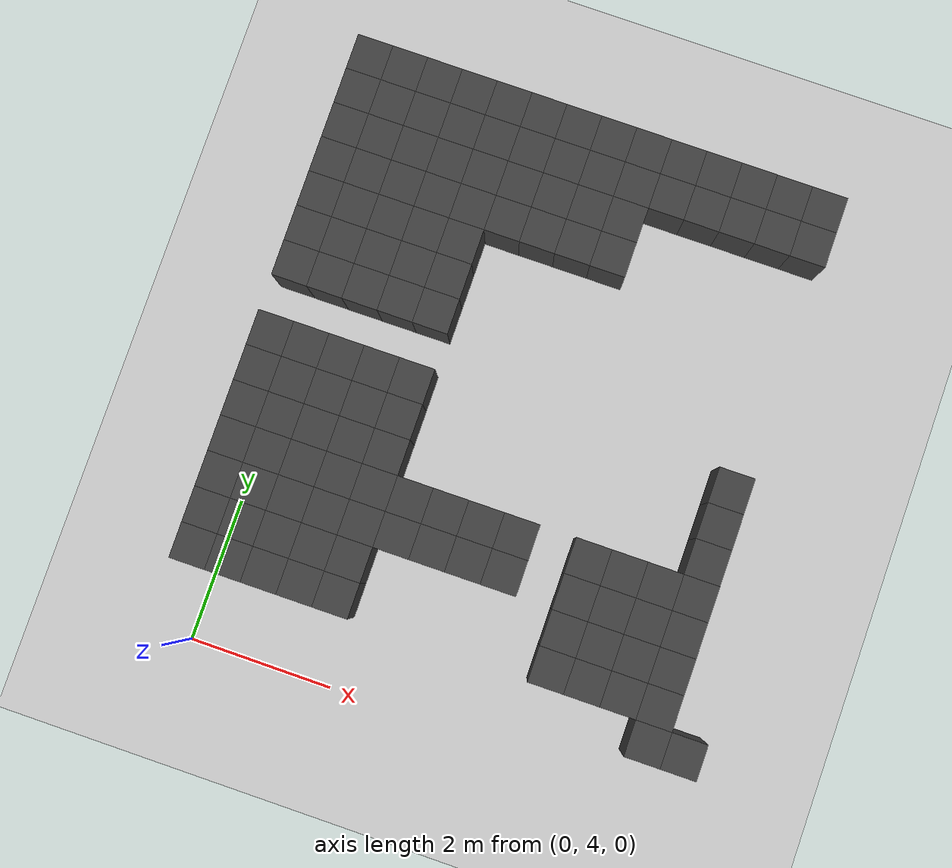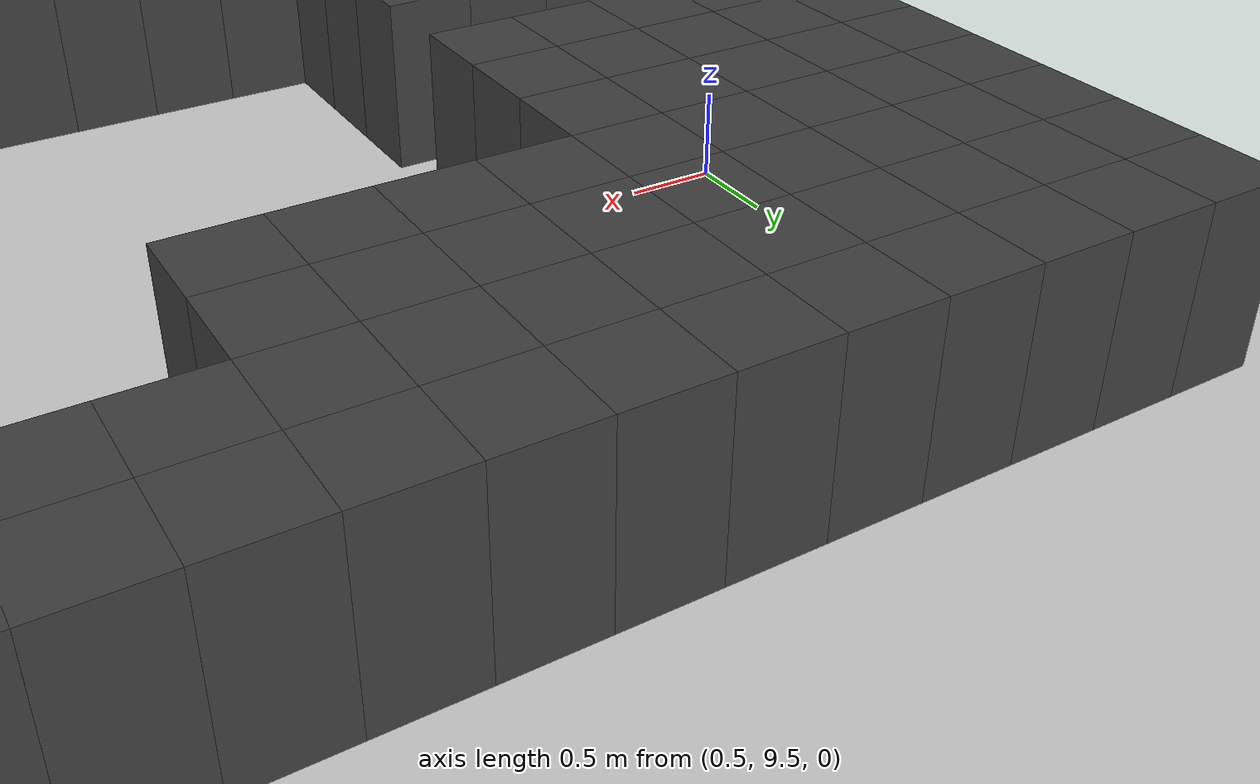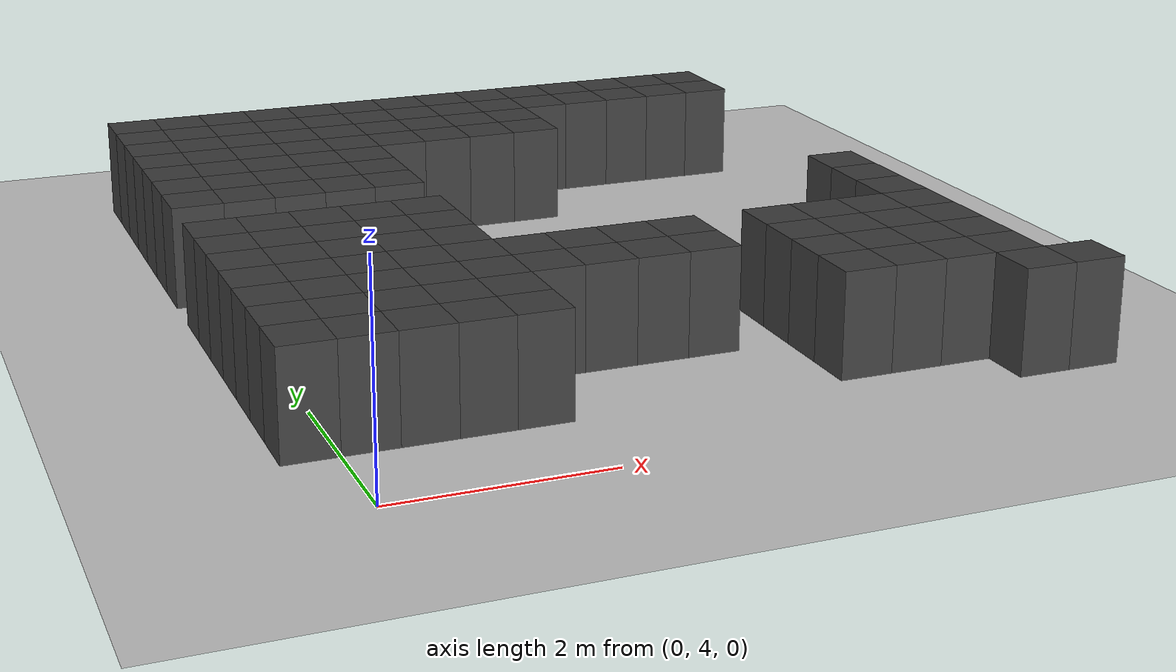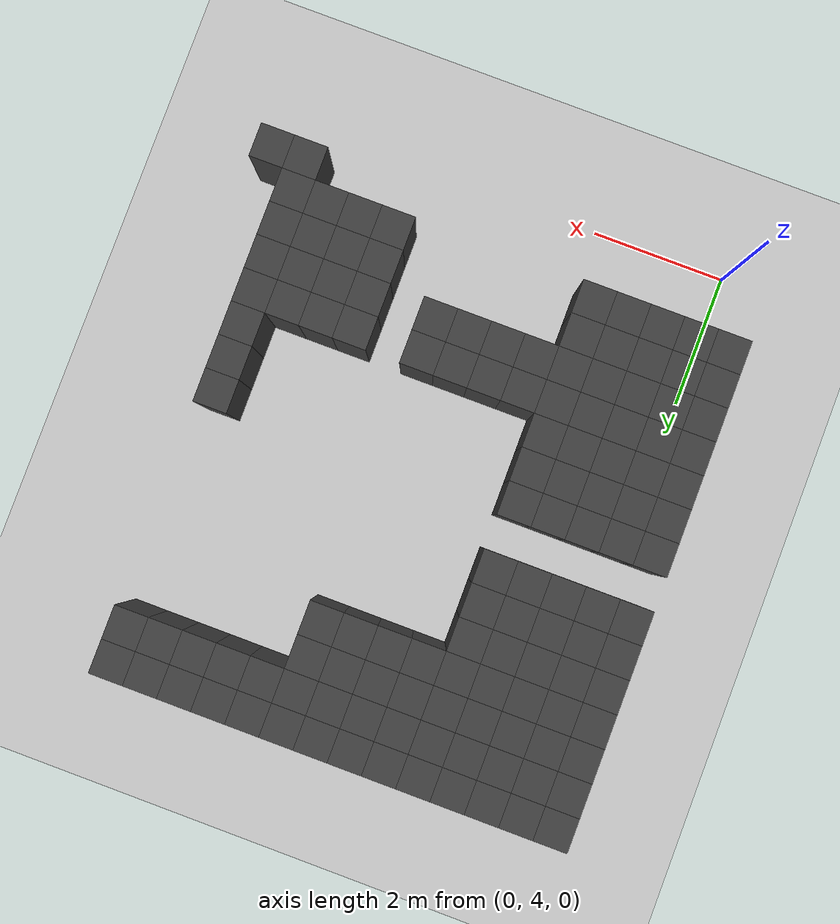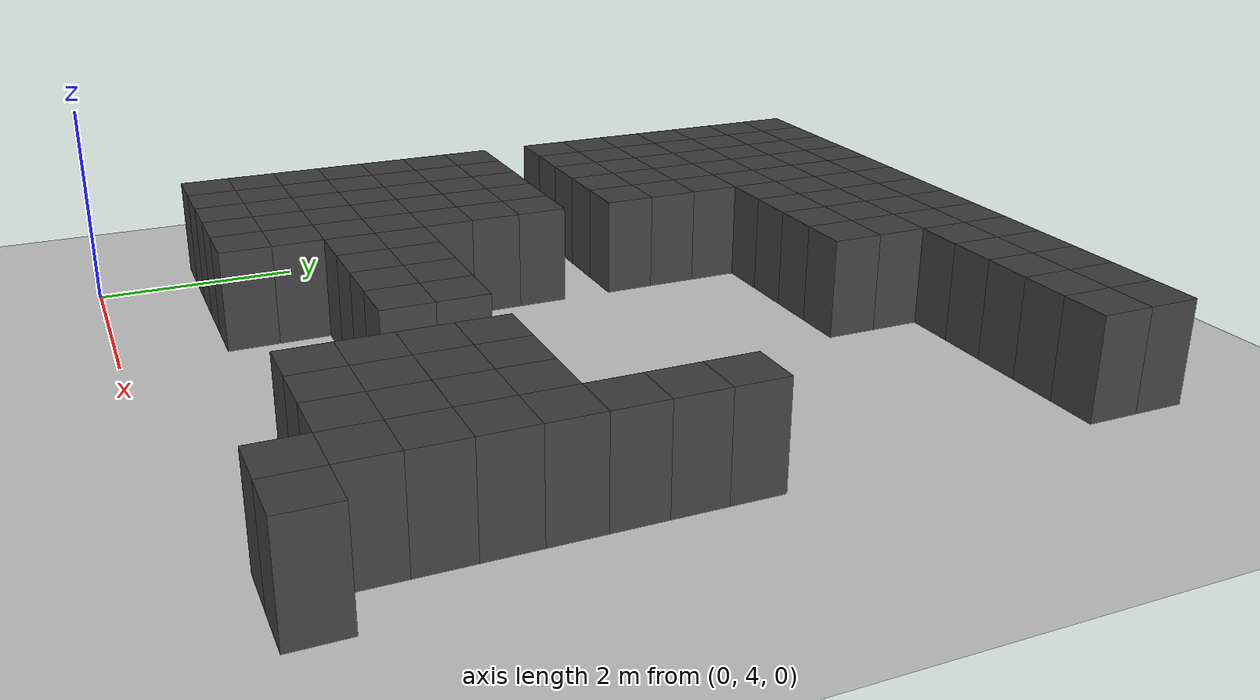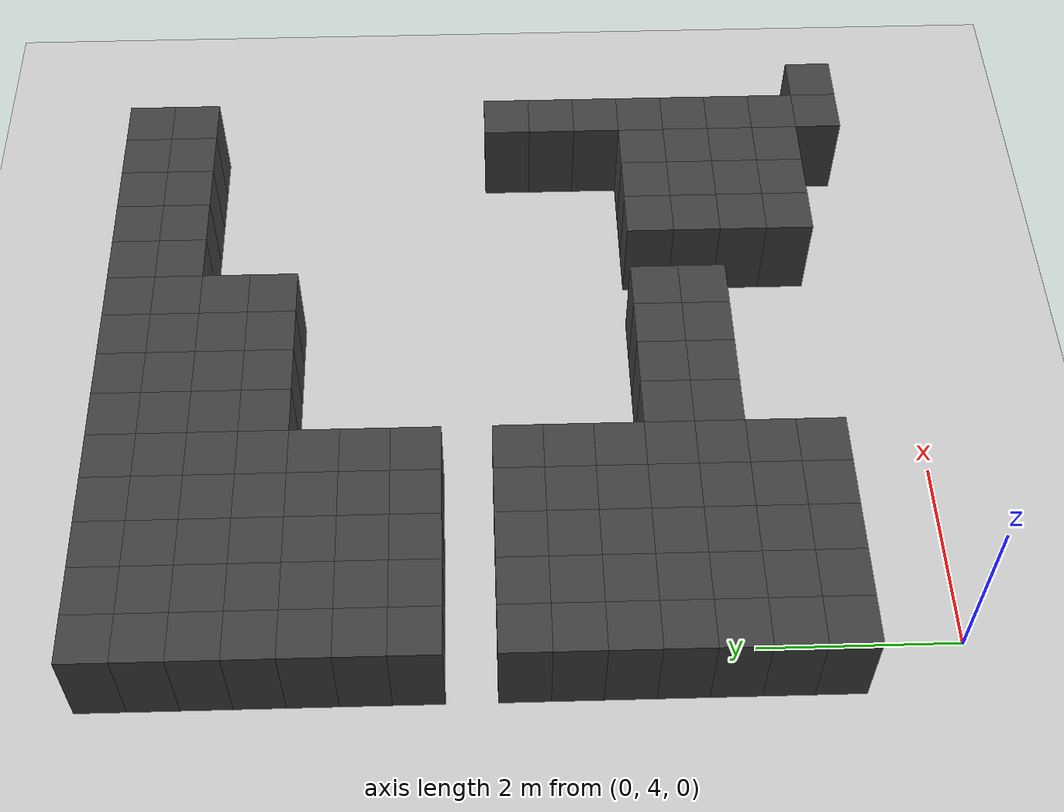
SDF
<sdf version="1.7">
 <world name="map_13994">
  <model name="ground_plane">
   <static>true</static>
   <link name="link">
    <collision name="collision">
     <geometry><plane><normal>0 0 1</normal><size>200 200</size></plane></geometry>
    </collision>
    <visual name="visual">
     <geometry><plane><normal>0 0 1</normal><size>200 200</size></plane></geometry>
     <material><ambient>0.8 0.8 0.8 1</ambient><diffuse>0.8 0.8 0.8 1</diffuse></material>
    </visual>
   </link>
  </model>
  <model name="maze_environment">
   <static>true</static>
   <link name="wall_24">
    <pose>-0.250 12.250 0.500 0 0 0</pose>
    <collision name="col"><geometry><box><size>0.5 0.5 1.0</size></box></geometry></collision>
    <visual name="vis">
     <geometry><box><size>0.5 0.5 1.0</size></box></geometry>
     <material><ambient>0.15 0.15 0.15 1</ambient><diffuse>0.25 0.25 0.25 1</diffuse></material>
    </visual>
   </link>
   <link name="wall_25">
    <pose>0.250 12.250 0.500 0 0 0</pose>
    <collision name="col"><geometry><box><size>0.5 0.5 1.0</size></box></geometry></collision>
    <visual name="vis">
     <geometry><box><size>0.5 0.5 1.0</size></box></geometry>
     <material><ambient>0.15 0.15 0.15 1</ambient><diffuse>0.25 0.25 0.25 1</diffuse></material>
    </visual>
   </link>
   <link name="wall_26">
    <pose>0.750 12.250 0.500 0 0 0</pose>
    <collision name="col"><geometry><box><size>0.5 0.5 1.0</size></box></geometry></collision>
    <visual name="vis">
     <geometry><box><size>0.5 0.5 1.0</size></box></geometry>
     <material><ambient>0.15 0.15 0.15 1</ambient><diffuse>0.25 0.25 0.25 1</diffuse></material>
    </visual>
   </link>
   <link name="wall_27">
    <pose>1.250 12.250 0.500 0 0 0</pose>
    <collision name="col"><geometry><box><size>0.5 0.5 1.0</size></box></geometry></collision>
    <visual name="vis">
     <geometry><box><size>0.5 0.5 1.0</size></box></geometry>
     <material><ambient>0.15 0.15 0.15 1</ambient><diffuse>0.25 0.25 0.25 1</diffuse></material>
    </visual>
   </link>
   <link name="wall_28">
    <pose>1.750 12.250 0.500 0 0 0</pose>
    <collision name="col"><geometry><box><size>0.5 0.5 1.0</size></box></geometry></collision>
    <visual name="vis">
     <geometry><box><size>0.5 0.5 1.0</size></box></geometry>
     <material><ambient>0.15 0.15 0.15 1</ambient><diffuse>0.25 0.25 0.25 1</diffuse></material>
    </visual>
   </link>
   <link name="wall_29">
    <pose>2.250 12.250 0.500 0 0 0</pose>
    <collision name="col"><geometry><box><size>0.5 0.5 1.0</size></box></geometry></collision>
    <visual name="vis">
     <geometry><box><size>0.5 0.5 1.0</size></box></geometry>
     <material><ambient>0.15 0.15 0.15 1</ambient><diffuse>0.25 0.25 0.25 1</diffuse></material>
    </visual>
   </link>
   <link name="wall_30">
    <pose>2.750 12.250 0.500 0 0 0</pose>
    <collision name="col"><geometry><box><size>0.5 0.5 1.0</size></box></geometry></collision>
    <visual name="vis">
     <geometry><box><size>0.5 0.5 1.0</size></box></geometry>
     <material><ambient>0.15 0.15 0.15 1</ambient><diffuse>0.25 0.25 0.25 1</diffuse></material>
    </visual>
   </link>
   <link name="wall_31">
    <pose>3.250 12.250 0.500 0 0 0</pose>
    <collision name="col"><geometry><box><size>0.5 0.5 1.0</size></box></geometry></collision>
    <visual name="vis">
     <geometry><box><size>0.5 0.5 1.0</size></box></geometry>
     <material><ambient>0.15 0.15 0.15 1</ambient><diffuse>0.25 0.25 0.25 1</diffuse></material>
    </visual>
   </link>
   <link name="wall_32">
    <pose>3.750 12.250 0.500 0 0 0</pose>
    <collision name="col"><geometry><box><size>0.5 0.5 1.0</size></box></geometry></collision>
    <visual name="vis">
     <geometry><box><size>0.5 0.5 1.0</size></box></geometry>
     <material><ambient>0.15 0.15 0.15 1</ambient><diffuse>0.25 0.25 0.25 1</diffuse></material>
    </visual>
   </link>
   <link name="wall_33">
    <pose>4.250 12.250 0.500 0 0 0</pose>
    <collision name="col"><geometry><box><size>0.5 0.5 1.0</size></box></geometry></collision>
    <visual name="vis">
     <geometry><box><size>0.5 0.5 1.0</size></box></geometry>
     <material><ambient>0.15 0.15 0.15 1</ambient><diffuse>0.25 0.25 0.25 1</diffuse></material>
    </visual>
   </link>
   <link name="wall_34">
    <pose>4.750 12.250 0.500 0 0 0</pose>
    <collision name="col"><geometry><box><size>0.5 0.5 1.0</size></box></geometry></collision>
    <visual name="vis">
     <geometry><box><size>0.5 0.5 1.0</size></box></geometry>
     <material><ambient>0.15 0.15 0.15 1</ambient><diffuse>0.25 0.25 0.25 1</diffuse></material>
    </visual>
   </link>
   <link name="wall_35">
    <pose>5.250 12.250 0.500 0 0 0</pose>
    <collision name="col"><geometry><box><size>0.5 0.5 1.0</size></box></geometry></collision>
    <visual name="vis">
     <geometry><box><size>0.5 0.5 1.0</size></box></geometry>
     <material><ambient>0.15 0.15 0.15 1</ambient><diffuse>0.25 0.25 0.25 1</diffuse></material>
    </visual>
   </link>
   <link name="wall_36">
    <pose>5.750 12.250 0.500 0 0 0</pose>
    <collision name="col"><geometry><box><size>0.5 0.5 1.0</size></box></geometry></collision>
    <visual name="vis">
     <geometry><box><size>0.5 0.5 1.0</size></box></geometry>
     <material><ambient>0.15 0.15 0.15 1</ambient><diffuse>0.25 0.25 0.25 1</diffuse></material>
    </visual>
   </link>
   <link name="wall_37">
    <pose>6.250 12.250 0.500 0 0 0</pose>
    <collision name="col"><geometry><box><size>0.5 0.5 1.0</size></box></geometry></collision>
    <visual name="vis">
     <geometry><box><size>0.5 0.5 1.0</size></box></geometry>
     <material><ambient>0.15 0.15 0.15 1</ambient><diffuse>0.25 0.25 0.25 1</diffuse></material>
    </visual>
   </link>
   <link name="wall_63">
    <pose>-0.250 11.750 0.500 0 0 0</pose>
    <collision name="col"><geometry><box><size>0.5 0.5 1.0</size></box></geometry></collision>
    <visual name="vis">
     <geometry><box><size>0.5 0.5 1.0</size></box></geometry>
     <material><ambient>0.15 0.15 0.15 1</ambient><diffuse>0.25 0.25 0.25 1</diffuse></material>
    </visual>
   </link>
   <link name="wall_64">
    <pose>0.250 11.750 0.500 0 0 0</pose>
    <collision name="col"><geometry><box><size>0.5 0.5 1.0</size></box></geometry></collision>
    <visual name="vis">
     <geometry><box><size>0.5 0.5 1.0</size></box></geometry>
     <material><ambient>0.15 0.15 0.15 1</ambient><diffuse>0.25 0.25 0.25 1</diffuse></material>
    </visual>
   </link>
   <link name="wall_65">
    <pose>0.750 11.750 0.500 0 0 0</pose>
    <collision name="col"><geometry><box><size>0.5 0.5 1.0</size></box></geometry></collision>
    <visual name="vis">
     <geometry><box><size>0.5 0.5 1.0</size></box></geometry>
     <material><ambient>0.15 0.15 0.15 1</ambient><diffuse>0.25 0.25 0.25 1</diffuse></material>
    </visual>
   </link>
   <link name="wall_66">
    <pose>1.250 11.750 0.500 0 0 0</pose>
    <collision name="col"><geometry><box><size>0.5 0.5 1.0</size></box></geometry></collision>
    <visual name="vis">
     <geometry><box><size>0.5 0.5 1.0</size></box></geometry>
     <material><ambient>0.15 0.15 0.15 1</ambient><diffuse>0.25 0.25 0.25 1</diffuse></material>
    </visual>
   </link>
   <link name="wall_67">
    <pose>1.750 11.750 0.500 0 0 0</pose>
    <collision name="col"><geometry><box><size>0.5 0.5 1.0</size></box></geometry></collision>
    <visual name="vis">
     <geometry><box><size>0.5 0.5 1.0</size></box></geometry>
     <material><ambient>0.15 0.15 0.15 1</ambient><diffuse>0.25 0.25 0.25 1</diffuse></material>
    </visual>
   </link>
   <link name="wall_68">
    <pose>2.250 11.750 0.500 0 0 0</pose>
    <collision name="col"><geometry><box><size>0.5 0.5 1.0</size></box></geometry></collision>
    <visual name="vis">
     <geometry><box><size>0.5 0.5 1.0</size></box></geometry>
     <material><ambient>0.15 0.15 0.15 1</ambient><diffuse>0.25 0.25 0.25 1</diffuse></material>
    </visual>
   </link>
   <link name="wall_69">
    <pose>2.750 11.750 0.500 0 0 0</pose>
    <collision name="col"><geometry><box><size>0.5 0.5 1.0</size></box></geometry></collision>
    <visual name="vis">
     <geometry><box><size>0.5 0.5 1.0</size></box></geometry>
     <material><ambient>0.15 0.15 0.15 1</ambient><diffuse>0.25 0.25 0.25 1</diffuse></material>
    </visual>
   </link>
   <link name="wall_70">
    <pose>3.250 11.750 0.500 0 0 0</pose>
    <collision name="col"><geometry><box><size>0.5 0.5 1.0</size></box></geometry></collision>
    <visual name="vis">
     <geometry><box><size>0.5 0.5 1.0</size></box></geometry>
     <material><ambient>0.15 0.15 0.15 1</ambient><diffuse>0.25 0.25 0.25 1</diffuse></material>
    </visual>
   </link>
   <link name="wall_71">
    <pose>3.750 11.750 0.500 0 0 0</pose>
    <collision name="col"><geometry><box><size>0.5 0.5 1.0</size></box></geometry></collision>
    <visual name="vis">
     <geometry><box><size>0.5 0.5 1.0</size></box></geometry>
     <material><ambient>0.15 0.15 0.15 1</ambient><diffuse>0.25 0.25 0.25 1</diffuse></material>
    </visual>
   </link>
   <link name="wall_72">
    <pose>4.250 11.750 0.500 0 0 0</pose>
    <collision name="col"><geometry><box><size>0.5 0.5 1.0</size></box></geometry></collision>
    <visual name="vis">
     <geometry><box><size>0.5 0.5 1.0</size></box></geometry>
     <material><ambient>0.15 0.15 0.15 1</ambient><diffuse>0.25 0.25 0.25 1</diffuse></material>
    </visual>
   </link>
   <link name="wall_73">
    <pose>4.750 11.750 0.500 0 0 0</pose>
    <collision name="col"><geometry><box><size>0.5 0.5 1.0</size></box></geometry></collision>
    <visual name="vis">
     <geometry><box><size>0.5 0.5 1.0</size></box></geometry>
     <material><ambient>0.15 0.15 0.15 1</ambient><diffuse>0.25 0.25 0.25 1</diffuse></material>
    </visual>
   </link>
   <link name="wall_74">
    <pose>5.250 11.750 0.500 0 0 0</pose>
    <collision name="col"><geometry><box><size>0.5 0.5 1.0</size></box></geometry></collision>
    <visual name="vis">
     <geometry><box><size>0.5 0.5 1.0</size></box></geometry>
     <material><ambient>0.15 0.15 0.15 1</ambient><diffuse>0.25 0.25 0.25 1</diffuse></material>
    </visual>
   </link>
   <link name="wall_75">
    <pose>5.750 11.750 0.500 0 0 0</pose>
    <collision name="col"><geometry><box><size>0.5 0.5 1.0</size></box></geometry></collision>
    <visual name="vis">
     <geometry><box><size>0.5 0.5 1.0</size></box></geometry>
     <material><ambient>0.15 0.15 0.15 1</ambient><diffuse>0.25 0.25 0.25 1</diffuse></material>
    </visual>
   </link>
   <link name="wall_76">
    <pose>6.250 11.750 0.500 0 0 0</pose>
    <collision name="col"><geometry><box><size>0.5 0.5 1.0</size></box></geometry></collision>
    <visual name="vis">
     <geometry><box><size>0.5 0.5 1.0</size></box></geometry>
     <material><ambient>0.15 0.15 0.15 1</ambient><diffuse>0.25 0.25 0.25 1</diffuse></material>
    </visual>
   </link>
   <link name="wall_102">
    <pose>-0.250 11.250 0.500 0 0 0</pose>
    <collision name="col"><geometry><box><size>0.5 0.5 1.0</size></box></geometry></collision>
    <visual name="vis">
     <geometry><box><size>0.5 0.5 1.0</size></box></geometry>
     <material><ambient>0.15 0.15 0.15 1</ambient><diffuse>0.25 0.25 0.25 1</diffuse></material>
    </visual>
   </link>
   <link name="wall_103">
    <pose>0.250 11.250 0.500 0 0 0</pose>
    <collision name="col"><geometry><box><size>0.5 0.5 1.0</size></box></geometry></collision>
    <visual name="vis">
     <geometry><box><size>0.5 0.5 1.0</size></box></geometry>
     <material><ambient>0.15 0.15 0.15 1</ambient><diffuse>0.25 0.25 0.25 1</diffuse></material>
    </visual>
   </link>
   <link name="wall_104">
    <pose>0.750 11.250 0.500 0 0 0</pose>
    <collision name="col"><geometry><box><size>0.5 0.5 1.0</size></box></geometry></collision>
    <visual name="vis">
     <geometry><box><size>0.5 0.5 1.0</size></box></geometry>
     <material><ambient>0.15 0.15 0.15 1</ambient><diffuse>0.25 0.25 0.25 1</diffuse></material>
    </visual>
   </link>
   <link name="wall_105">
    <pose>1.250 11.250 0.500 0 0 0</pose>
    <collision name="col"><geometry><box><size>0.5 0.5 1.0</size></box></geometry></collision>
    <visual name="vis">
     <geometry><box><size>0.5 0.5 1.0</size></box></geometry>
     <material><ambient>0.15 0.15 0.15 1</ambient><diffuse>0.25 0.25 0.25 1</diffuse></material>
    </visual>
   </link>
   <link name="wall_106">
    <pose>1.750 11.250 0.500 0 0 0</pose>
    <collision name="col"><geometry><box><size>0.5 0.5 1.0</size></box></geometry></collision>
    <visual name="vis">
     <geometry><box><size>0.5 0.5 1.0</size></box></geometry>
     <material><ambient>0.15 0.15 0.15 1</ambient><diffuse>0.25 0.25 0.25 1</diffuse></material>
    </visual>
   </link>
   <link name="wall_107">
    <pose>2.250 11.250 0.500 0 0 0</pose>
    <collision name="col"><geometry><box><size>0.5 0.5 1.0</size></box></geometry></collision>
    <visual name="vis">
     <geometry><box><size>0.5 0.5 1.0</size></box></geometry>
     <material><ambient>0.15 0.15 0.15 1</ambient><diffuse>0.25 0.25 0.25 1</diffuse></material>
    </visual>
   </link>
   <link name="wall_108">
    <pose>2.750 11.250 0.500 0 0 0</pose>
    <collision name="col"><geometry><box><size>0.5 0.5 1.0</size></box></geometry></collision>
    <visual name="vis">
     <geometry><box><size>0.5 0.5 1.0</size></box></geometry>
     <material><ambient>0.15 0.15 0.15 1</ambient><diffuse>0.25 0.25 0.25 1</diffuse></material>
    </visual>
   </link>
   <link name="wall_109">
    <pose>3.250 11.250 0.500 0 0 0</pose>
    <collision name="col"><geometry><box><size>0.5 0.5 1.0</size></box></geometry></collision>
    <visual name="vis">
     <geometry><box><size>0.5 0.5 1.0</size></box></geometry>
     <material><ambient>0.15 0.15 0.15 1</ambient><diffuse>0.25 0.25 0.25 1</diffuse></material>
    </visual>
   </link>
   <link name="wall_110">
    <pose>3.750 11.250 0.500 0 0 0</pose>
    <collision name="col"><geometry><box><size>0.5 0.5 1.0</size></box></geometry></collision>
    <visual name="vis">
     <geometry><box><size>0.5 0.5 1.0</size></box></geometry>
     <material><ambient>0.15 0.15 0.15 1</ambient><diffuse>0.25 0.25 0.25 1</diffuse></material>
    </visual>
   </link>
   <link name="wall_127">
    <pose>-0.250 10.750 0.500 0 0 0</pose>
    <collision name="col"><geometry><box><size>0.5 0.5 1.0</size></box></geometry></collision>
    <visual name="vis">
     <geometry><box><size>0.5 0.5 1.0</size></box></geometry>
     <material><ambient>0.15 0.15 0.15 1</ambient><diffuse>0.25 0.25 0.25 1</diffuse></material>
    </visual>
   </link>
   <link name="wall_128">
    <pose>0.250 10.750 0.500 0 0 0</pose>
    <collision name="col"><geometry><box><size>0.5 0.5 1.0</size></box></geometry></collision>
    <visual name="vis">
     <geometry><box><size>0.5 0.5 1.0</size></box></geometry>
     <material><ambient>0.15 0.15 0.15 1</ambient><diffuse>0.25 0.25 0.25 1</diffuse></material>
    </visual>
   </link>
   <link name="wall_129">
    <pose>0.750 10.750 0.500 0 0 0</pose>
    <collision name="col"><geometry><box><size>0.5 0.5 1.0</size></box></geometry></collision>
    <visual name="vis">
     <geometry><box><size>0.5 0.5 1.0</size></box></geometry>
     <material><ambient>0.15 0.15 0.15 1</ambient><diffuse>0.25 0.25 0.25 1</diffuse></material>
    </visual>
   </link>
   <link name="wall_130">
    <pose>1.250 10.750 0.500 0 0 0</pose>
    <collision name="col"><geometry><box><size>0.5 0.5 1.0</size></box></geometry></collision>
    <visual name="vis">
     <geometry><box><size>0.5 0.5 1.0</size></box></geometry>
     <material><ambient>0.15 0.15 0.15 1</ambient><diffuse>0.25 0.25 0.25 1</diffuse></material>
    </visual>
   </link>
   <link name="wall_131">
    <pose>1.750 10.750 0.500 0 0 0</pose>
    <collision name="col"><geometry><box><size>0.5 0.5 1.0</size></box></geometry></collision>
    <visual name="vis">
     <geometry><box><size>0.5 0.5 1.0</size></box></geometry>
     <material><ambient>0.15 0.15 0.15 1</ambient><diffuse>0.25 0.25 0.25 1</diffuse></material>
    </visual>
   </link>
   <link name="wall_132">
    <pose>2.250 10.750 0.500 0 0 0</pose>
    <collision name="col"><geometry><box><size>0.5 0.5 1.0</size></box></geometry></collision>
    <visual name="vis">
     <geometry><box><size>0.5 0.5 1.0</size></box></geometry>
     <material><ambient>0.15 0.15 0.15 1</ambient><diffuse>0.25 0.25 0.25 1</diffuse></material>
    </visual>
   </link>
   <link name="wall_133">
    <pose>2.750 10.750 0.500 0 0 0</pose>
    <collision name="col"><geometry><box><size>0.5 0.5 1.0</size></box></geometry></collision>
    <visual name="vis">
     <geometry><box><size>0.5 0.5 1.0</size></box></geometry>
     <material><ambient>0.15 0.15 0.15 1</ambient><diffuse>0.25 0.25 0.25 1</diffuse></material>
    </visual>
   </link>
   <link name="wall_134">
    <pose>3.250 10.750 0.500 0 0 0</pose>
    <collision name="col"><geometry><box><size>0.5 0.5 1.0</size></box></geometry></collision>
    <visual name="vis">
     <geometry><box><size>0.5 0.5 1.0</size></box></geometry>
     <material><ambient>0.15 0.15 0.15 1</ambient><diffuse>0.25 0.25 0.25 1</diffuse></material>
    </visual>
   </link>
   <link name="wall_135">
    <pose>3.750 10.750 0.500 0 0 0</pose>
    <collision name="col"><geometry><box><size>0.5 0.5 1.0</size></box></geometry></collision>
    <visual name="vis">
     <geometry><box><size>0.5 0.5 1.0</size></box></geometry>
     <material><ambient>0.15 0.15 0.15 1</ambient><diffuse>0.25 0.25 0.25 1</diffuse></material>
    </visual>
   </link>
   <link name="wall_154">
    <pose>-0.250 10.250 0.500 0 0 0</pose>
    <collision name="col"><geometry><box><size>0.5 0.5 1.0</size></box></geometry></collision>
    <visual name="vis">
     <geometry><box><size>0.5 0.5 1.0</size></box></geometry>
     <material><ambient>0.15 0.15 0.15 1</ambient><diffuse>0.25 0.25 0.25 1</diffuse></material>
    </visual>
   </link>
   <link name="wall_155">
    <pose>0.250 10.250 0.500 0 0 0</pose>
    <collision name="col"><geometry><box><size>0.5 0.5 1.0</size></box></geometry></collision>
    <visual name="vis">
     <geometry><box><size>0.5 0.5 1.0</size></box></geometry>
     <material><ambient>0.15 0.15 0.15 1</ambient><diffuse>0.25 0.25 0.25 1</diffuse></material>
    </visual>
   </link>
   <link name="wall_156">
    <pose>0.750 10.250 0.500 0 0 0</pose>
    <collision name="col"><geometry><box><size>0.5 0.5 1.0</size></box></geometry></collision>
    <visual name="vis">
     <geometry><box><size>0.5 0.5 1.0</size></box></geometry>
     <material><ambient>0.15 0.15 0.15 1</ambient><diffuse>0.25 0.25 0.25 1</diffuse></material>
    </visual>
   </link>
   <link name="wall_157">
    <pose>1.250 10.250 0.500 0 0 0</pose>
    <collision name="col"><geometry><box><size>0.5 0.5 1.0</size></box></geometry></collision>
    <visual name="vis">
     <geometry><box><size>0.5 0.5 1.0</size></box></geometry>
     <material><ambient>0.15 0.15 0.15 1</ambient><diffuse>0.25 0.25 0.25 1</diffuse></material>
    </visual>
   </link>
   <link name="wall_158">
    <pose>1.750 10.250 0.500 0 0 0</pose>
    <collision name="col"><geometry><box><size>0.5 0.5 1.0</size></box></geometry></collision>
    <visual name="vis">
     <geometry><box><size>0.5 0.5 1.0</size></box></geometry>
     <material><ambient>0.15 0.15 0.15 1</ambient><diffuse>0.25 0.25 0.25 1</diffuse></material>
    </visual>
   </link>
   <link name="wall_174">
    <pose>-0.250 9.750 0.500 0 0 0</pose>
    <collision name="col"><geometry><box><size>0.5 0.5 1.0</size></box></geometry></collision>
    <visual name="vis">
     <geometry><box><size>0.5 0.5 1.0</size></box></geometry>
     <material><ambient>0.15 0.15 0.15 1</ambient><diffuse>0.25 0.25 0.25 1</diffuse></material>
    </visual>
   </link>
   <link name="wall_175">
    <pose>0.250 9.750 0.500 0 0 0</pose>
    <collision name="col"><geometry><box><size>0.5 0.5 1.0</size></box></geometry></collision>
    <visual name="vis">
     <geometry><box><size>0.5 0.5 1.0</size></box></geometry>
     <material><ambient>0.15 0.15 0.15 1</ambient><diffuse>0.25 0.25 0.25 1</diffuse></material>
    </visual>
   </link>
   <link name="wall_176">
    <pose>0.750 9.750 0.500 0 0 0</pose>
    <collision name="col"><geometry><box><size>0.5 0.5 1.0</size></box></geometry></collision>
    <visual name="vis">
     <geometry><box><size>0.5 0.5 1.0</size></box></geometry>
     <material><ambient>0.15 0.15 0.15 1</ambient><diffuse>0.25 0.25 0.25 1</diffuse></material>
    </visual>
   </link>
   <link name="wall_177">
    <pose>1.250 9.750 0.500 0 0 0</pose>
    <collision name="col"><geometry><box><size>0.5 0.5 1.0</size></box></geometry></collision>
    <visual name="vis">
     <geometry><box><size>0.5 0.5 1.0</size></box></geometry>
     <material><ambient>0.15 0.15 0.15 1</ambient><diffuse>0.25 0.25 0.25 1</diffuse></material>
    </visual>
   </link>
   <link name="wall_178">
    <pose>1.750 9.750 0.500 0 0 0</pose>
    <collision name="col"><geometry><box><size>0.5 0.5 1.0</size></box></geometry></collision>
    <visual name="vis">
     <geometry><box><size>0.5 0.5 1.0</size></box></geometry>
     <material><ambient>0.15 0.15 0.15 1</ambient><diffuse>0.25 0.25 0.25 1</diffuse></material>
    </visual>
   </link>
   <link name="wall_194">
    <pose>-0.250 9.250 0.500 0 0 0</pose>
    <collision name="col"><geometry><box><size>0.5 0.5 1.0</size></box></geometry></collision>
    <visual name="vis">
     <geometry><box><size>0.5 0.5 1.0</size></box></geometry>
     <material><ambient>0.15 0.15 0.15 1</ambient><diffuse>0.25 0.25 0.25 1</diffuse></material>
    </visual>
   </link>
   <link name="wall_195">
    <pose>0.250 9.250 0.500 0 0 0</pose>
    <collision name="col"><geometry><box><size>0.5 0.5 1.0</size></box></geometry></collision>
    <visual name="vis">
     <geometry><box><size>0.5 0.5 1.0</size></box></geometry>
     <material><ambient>0.15 0.15 0.15 1</ambient><diffuse>0.25 0.25 0.25 1</diffuse></material>
    </visual>
   </link>
   <link name="wall_196">
    <pose>0.750 9.250 0.500 0 0 0</pose>
    <collision name="col"><geometry><box><size>0.5 0.5 1.0</size></box></geometry></collision>
    <visual name="vis">
     <geometry><box><size>0.5 0.5 1.0</size></box></geometry>
     <material><ambient>0.15 0.15 0.15 1</ambient><diffuse>0.25 0.25 0.25 1</diffuse></material>
    </visual>
   </link>
   <link name="wall_197">
    <pose>1.250 9.250 0.500 0 0 0</pose>
    <collision name="col"><geometry><box><size>0.5 0.5 1.0</size></box></geometry></collision>
    <visual name="vis">
     <geometry><box><size>0.5 0.5 1.0</size></box></geometry>
     <material><ambient>0.15 0.15 0.15 1</ambient><diffuse>0.25 0.25 0.25 1</diffuse></material>
    </visual>
   </link>
   <link name="wall_198">
    <pose>1.750 9.250 0.500 0 0 0</pose>
    <collision name="col"><geometry><box><size>0.5 0.5 1.0</size></box></geometry></collision>
    <visual name="vis">
     <geometry><box><size>0.5 0.5 1.0</size></box></geometry>
     <material><ambient>0.15 0.15 0.15 1</ambient><diffuse>0.25 0.25 0.25 1</diffuse></material>
    </visual>
   </link>
   <link name="wall_227">
    <pose>-0.250 8.250 0.500 0 0 0</pose>
    <collision name="col"><geometry><box><size>0.5 0.5 1.0</size></box></geometry></collision>
    <visual name="vis">
     <geometry><box><size>0.5 0.5 1.0</size></box></geometry>
     <material><ambient>0.15 0.15 0.15 1</ambient><diffuse>0.25 0.25 0.25 1</diffuse></material>
    </visual>
   </link>
   <link name="wall_228">
    <pose>0.250 8.250 0.500 0 0 0</pose>
    <collision name="col"><geometry><box><size>0.5 0.5 1.0</size></box></geometry></collision>
    <visual name="vis">
     <geometry><box><size>0.5 0.5 1.0</size></box></geometry>
     <material><ambient>0.15 0.15 0.15 1</ambient><diffuse>0.25 0.25 0.25 1</diffuse></material>
    </visual>
   </link>
   <link name="wall_229">
    <pose>0.750 8.250 0.500 0 0 0</pose>
    <collision name="col"><geometry><box><size>0.5 0.5 1.0</size></box></geometry></collision>
    <visual name="vis">
     <geometry><box><size>0.5 0.5 1.0</size></box></geometry>
     <material><ambient>0.15 0.15 0.15 1</ambient><diffuse>0.25 0.25 0.25 1</diffuse></material>
    </visual>
   </link>
   <link name="wall_230">
    <pose>1.250 8.250 0.500 0 0 0</pose>
    <collision name="col"><geometry><box><size>0.5 0.5 1.0</size></box></geometry></collision>
    <visual name="vis">
     <geometry><box><size>0.5 0.5 1.0</size></box></geometry>
     <material><ambient>0.15 0.15 0.15 1</ambient><diffuse>0.25 0.25 0.25 1</diffuse></material>
    </visual>
   </link>
   <link name="wall_231">
    <pose>1.750 8.250 0.500 0 0 0</pose>
    <collision name="col"><geometry><box><size>0.5 0.5 1.0</size></box></geometry></collision>
    <visual name="vis">
     <geometry><box><size>0.5 0.5 1.0</size></box></geometry>
     <material><ambient>0.15 0.15 0.15 1</ambient><diffuse>0.25 0.25 0.25 1</diffuse></material>
    </visual>
   </link>
   <link name="wall_232">
    <pose>6.250 8.250 0.500 0 0 0</pose>
    <collision name="col"><geometry><box><size>0.5 0.5 1.0</size></box></geometry></collision>
    <visual name="vis">
     <geometry><box><size>0.5 0.5 1.0</size></box></geometry>
     <material><ambient>0.15 0.15 0.15 1</ambient><diffuse>0.25 0.25 0.25 1</diffuse></material>
    </visual>
   </link>
   <link name="wall_257">
    <pose>-0.250 7.750 0.500 0 0 0</pose>
    <collision name="col"><geometry><box><size>0.5 0.5 1.0</size></box></geometry></collision>
    <visual name="vis">
     <geometry><box><size>0.5 0.5 1.0</size></box></geometry>
     <material><ambient>0.15 0.15 0.15 1</ambient><diffuse>0.25 0.25 0.25 1</diffuse></material>
    </visual>
   </link>
   <link name="wall_258">
    <pose>0.250 7.750 0.500 0 0 0</pose>
    <collision name="col"><geometry><box><size>0.5 0.5 1.0</size></box></geometry></collision>
    <visual name="vis">
     <geometry><box><size>0.5 0.5 1.0</size></box></geometry>
     <material><ambient>0.15 0.15 0.15 1</ambient><diffuse>0.25 0.25 0.25 1</diffuse></material>
    </visual>
   </link>
   <link name="wall_259">
    <pose>0.750 7.750 0.500 0 0 0</pose>
    <collision name="col"><geometry><box><size>0.5 0.5 1.0</size></box></geometry></collision>
    <visual name="vis">
     <geometry><box><size>0.5 0.5 1.0</size></box></geometry>
     <material><ambient>0.15 0.15 0.15 1</ambient><diffuse>0.25 0.25 0.25 1</diffuse></material>
    </visual>
   </link>
   <link name="wall_260">
    <pose>1.250 7.750 0.500 0 0 0</pose>
    <collision name="col"><geometry><box><size>0.5 0.5 1.0</size></box></geometry></collision>
    <visual name="vis">
     <geometry><box><size>0.5 0.5 1.0</size></box></geometry>
     <material><ambient>0.15 0.15 0.15 1</ambient><diffuse>0.25 0.25 0.25 1</diffuse></material>
    </visual>
   </link>
   <link name="wall_261">
    <pose>1.750 7.750 0.500 0 0 0</pose>
    <collision name="col"><geometry><box><size>0.5 0.5 1.0</size></box></geometry></collision>
    <visual name="vis">
     <geometry><box><size>0.5 0.5 1.0</size></box></geometry>
     <material><ambient>0.15 0.15 0.15 1</ambient><diffuse>0.25 0.25 0.25 1</diffuse></material>
    </visual>
   </link>
   <link name="wall_262">
    <pose>6.250 7.750 0.500 0 0 0</pose>
    <collision name="col"><geometry><box><size>0.5 0.5 1.0</size></box></geometry></collision>
    <visual name="vis">
     <geometry><box><size>0.5 0.5 1.0</size></box></geometry>
     <material><ambient>0.15 0.15 0.15 1</ambient><diffuse>0.25 0.25 0.25 1</diffuse></material>
    </visual>
   </link>
   <link name="wall_287">
    <pose>-0.250 7.250 0.500 0 0 0</pose>
    <collision name="col"><geometry><box><size>0.5 0.5 1.0</size></box></geometry></collision>
    <visual name="vis">
     <geometry><box><size>0.5 0.5 1.0</size></box></geometry>
     <material><ambient>0.15 0.15 0.15 1</ambient><diffuse>0.25 0.25 0.25 1</diffuse></material>
    </visual>
   </link>
   <link name="wall_288">
    <pose>0.250 7.250 0.500 0 0 0</pose>
    <collision name="col"><geometry><box><size>0.5 0.5 1.0</size></box></geometry></collision>
    <visual name="vis">
     <geometry><box><size>0.5 0.5 1.0</size></box></geometry>
     <material><ambient>0.15 0.15 0.15 1</ambient><diffuse>0.25 0.25 0.25 1</diffuse></material>
    </visual>
   </link>
   <link name="wall_289">
    <pose>0.750 7.250 0.500 0 0 0</pose>
    <collision name="col"><geometry><box><size>0.5 0.5 1.0</size></box></geometry></collision>
    <visual name="vis">
     <geometry><box><size>0.5 0.5 1.0</size></box></geometry>
     <material><ambient>0.15 0.15 0.15 1</ambient><diffuse>0.25 0.25 0.25 1</diffuse></material>
    </visual>
   </link>
   <link name="wall_290">
    <pose>1.250 7.250 0.500 0 0 0</pose>
    <collision name="col"><geometry><box><size>0.5 0.5 1.0</size></box></geometry></collision>
    <visual name="vis">
     <geometry><box><size>0.5 0.5 1.0</size></box></geometry>
     <material><ambient>0.15 0.15 0.15 1</ambient><diffuse>0.25 0.25 0.25 1</diffuse></material>
    </visual>
   </link>
   <link name="wall_291">
    <pose>1.750 7.250 0.500 0 0 0</pose>
    <collision name="col"><geometry><box><size>0.5 0.5 1.0</size></box></geometry></collision>
    <visual name="vis">
     <geometry><box><size>0.5 0.5 1.0</size></box></geometry>
     <material><ambient>0.15 0.15 0.15 1</ambient><diffuse>0.25 0.25 0.25 1</diffuse></material>
    </visual>
   </link>
   <link name="wall_292">
    <pose>6.250 7.250 0.500 0 0 0</pose>
    <collision name="col"><geometry><box><size>0.5 0.5 1.0</size></box></geometry></collision>
    <visual name="vis">
     <geometry><box><size>0.5 0.5 1.0</size></box></geometry>
     <material><ambient>0.15 0.15 0.15 1</ambient><diffuse>0.25 0.25 0.25 1</diffuse></material>
    </visual>
   </link>
   <link name="wall_317">
    <pose>-0.250 6.750 0.500 0 0 0</pose>
    <collision name="col"><geometry><box><size>0.5 0.5 1.0</size></box></geometry></collision>
    <visual name="vis">
     <geometry><box><size>0.5 0.5 1.0</size></box></geometry>
     <material><ambient>0.15 0.15 0.15 1</ambient><diffuse>0.25 0.25 0.25 1</diffuse></material>
    </visual>
   </link>
   <link name="wall_318">
    <pose>0.250 6.750 0.500 0 0 0</pose>
    <collision name="col"><geometry><box><size>0.5 0.5 1.0</size></box></geometry></collision>
    <visual name="vis">
     <geometry><box><size>0.5 0.5 1.0</size></box></geometry>
     <material><ambient>0.15 0.15 0.15 1</ambient><diffuse>0.25 0.25 0.25 1</diffuse></material>
    </visual>
   </link>
   <link name="wall_319">
    <pose>0.750 6.750 0.500 0 0 0</pose>
    <collision name="col"><geometry><box><size>0.5 0.5 1.0</size></box></geometry></collision>
    <visual name="vis">
     <geometry><box><size>0.5 0.5 1.0</size></box></geometry>
     <material><ambient>0.15 0.15 0.15 1</ambient><diffuse>0.25 0.25 0.25 1</diffuse></material>
    </visual>
   </link>
   <link name="wall_320">
    <pose>1.250 6.750 0.500 0 0 0</pose>
    <collision name="col"><geometry><box><size>0.5 0.5 1.0</size></box></geometry></collision>
    <visual name="vis">
     <geometry><box><size>0.5 0.5 1.0</size></box></geometry>
     <material><ambient>0.15 0.15 0.15 1</ambient><diffuse>0.25 0.25 0.25 1</diffuse></material>
    </visual>
   </link>
   <link name="wall_321">
    <pose>1.750 6.750 0.500 0 0 0</pose>
    <collision name="col"><geometry><box><size>0.5 0.5 1.0</size></box></geometry></collision>
    <visual name="vis">
     <geometry><box><size>0.5 0.5 1.0</size></box></geometry>
     <material><ambient>0.15 0.15 0.15 1</ambient><diffuse>0.25 0.25 0.25 1</diffuse></material>
    </visual>
   </link>
   <link name="wall_322">
    <pose>2.250 6.750 0.500 0 0 0</pose>
    <collision name="col"><geometry><box><size>0.5 0.5 1.0</size></box></geometry></collision>
    <visual name="vis">
     <geometry><box><size>0.5 0.5 1.0</size></box></geometry>
     <material><ambient>0.15 0.15 0.15 1</ambient><diffuse>0.25 0.25 0.25 1</diffuse></material>
    </visual>
   </link>
   <link name="wall_323">
    <pose>2.750 6.750 0.500 0 0 0</pose>
    <collision name="col"><geometry><box><size>0.5 0.5 1.0</size></box></geometry></collision>
    <visual name="vis">
     <geometry><box><size>0.5 0.5 1.0</size></box></geometry>
     <material><ambient>0.15 0.15 0.15 1</ambient><diffuse>0.25 0.25 0.25 1</diffuse></material>
    </visual>
   </link>
   <link name="wall_324">
    <pose>3.250 6.750 0.500 0 0 0</pose>
    <collision name="col"><geometry><box><size>0.5 0.5 1.0</size></box></geometry></collision>
    <visual name="vis">
     <geometry><box><size>0.5 0.5 1.0</size></box></geometry>
     <material><ambient>0.15 0.15 0.15 1</ambient><diffuse>0.25 0.25 0.25 1</diffuse></material>
    </visual>
   </link>
   <link name="wall_325">
    <pose>3.750 6.750 0.500 0 0 0</pose>
    <collision name="col"><geometry><box><size>0.5 0.5 1.0</size></box></geometry></collision>
    <visual name="vis">
     <geometry><box><size>0.5 0.5 1.0</size></box></geometry>
     <material><ambient>0.15 0.15 0.15 1</ambient><diffuse>0.25 0.25 0.25 1</diffuse></material>
    </visual>
   </link>
   <link name="wall_326">
    <pose>4.750 6.750 0.500 0 0 0</pose>
    <collision name="col"><geometry><box><size>0.5 0.5 1.0</size></box></geometry></collision>
    <visual name="vis">
     <geometry><box><size>0.5 0.5 1.0</size></box></geometry>
     <material><ambient>0.15 0.15 0.15 1</ambient><diffuse>0.25 0.25 0.25 1</diffuse></material>
    </visual>
   </link>
   <link name="wall_327">
    <pose>5.250 6.750 0.500 0 0 0</pose>
    <collision name="col"><geometry><box><size>0.5 0.5 1.0</size></box></geometry></collision>
    <visual name="vis">
     <geometry><box><size>0.5 0.5 1.0</size></box></geometry>
     <material><ambient>0.15 0.15 0.15 1</ambient><diffuse>0.25 0.25 0.25 1</diffuse></material>
    </visual>
   </link>
   <link name="wall_328">
    <pose>5.750 6.750 0.500 0 0 0</pose>
    <collision name="col"><geometry><box><size>0.5 0.5 1.0</size></box></geometry></collision>
    <visual name="vis">
     <geometry><box><size>0.5 0.5 1.0</size></box></geometry>
     <material><ambient>0.15 0.15 0.15 1</ambient><diffuse>0.25 0.25 0.25 1</diffuse></material>
    </visual>
   </link>
   <link name="wall_329">
    <pose>6.250 6.750 0.500 0 0 0</pose>
    <collision name="col"><geometry><box><size>0.5 0.5 1.0</size></box></geometry></collision>
    <visual name="vis">
     <geometry><box><size>0.5 0.5 1.0</size></box></geometry>
     <material><ambient>0.15 0.15 0.15 1</ambient><diffuse>0.25 0.25 0.25 1</diffuse></material>
    </visual>
   </link>
   <link name="wall_350">
    <pose>-0.250 6.250 0.500 0 0 0</pose>
    <collision name="col"><geometry><box><size>0.5 0.5 1.0</size></box></geometry></collision>
    <visual name="vis">
     <geometry><box><size>0.5 0.5 1.0</size></box></geometry>
     <material><ambient>0.15 0.15 0.15 1</ambient><diffuse>0.25 0.25 0.25 1</diffuse></material>
    </visual>
   </link>
   <link name="wall_351">
    <pose>0.250 6.250 0.500 0 0 0</pose>
    <collision name="col"><geometry><box><size>0.5 0.5 1.0</size></box></geometry></collision>
    <visual name="vis">
     <geometry><box><size>0.5 0.5 1.0</size></box></geometry>
     <material><ambient>0.15 0.15 0.15 1</ambient><diffuse>0.25 0.25 0.25 1</diffuse></material>
    </visual>
   </link>
   <link name="wall_352">
    <pose>0.750 6.250 0.500 0 0 0</pose>
    <collision name="col"><geometry><box><size>0.5 0.5 1.0</size></box></geometry></collision>
    <visual name="vis">
     <geometry><box><size>0.5 0.5 1.0</size></box></geometry>
     <material><ambient>0.15 0.15 0.15 1</ambient><diffuse>0.25 0.25 0.25 1</diffuse></material>
    </visual>
   </link>
   <link name="wall_353">
    <pose>1.250 6.250 0.500 0 0 0</pose>
    <collision name="col"><geometry><box><size>0.5 0.5 1.0</size></box></geometry></collision>
    <visual name="vis">
     <geometry><box><size>0.5 0.5 1.0</size></box></geometry>
     <material><ambient>0.15 0.15 0.15 1</ambient><diffuse>0.25 0.25 0.25 1</diffuse></material>
    </visual>
   </link>
   <link name="wall_354">
    <pose>1.750 6.250 0.500 0 0 0</pose>
    <collision name="col"><geometry><box><size>0.5 0.5 1.0</size></box></geometry></collision>
    <visual name="vis">
     <geometry><box><size>0.5 0.5 1.0</size></box></geometry>
     <material><ambient>0.15 0.15 0.15 1</ambient><diffuse>0.25 0.25 0.25 1</diffuse></material>
    </visual>
   </link>
   <link name="wall_355">
    <pose>2.250 6.250 0.500 0 0 0</pose>
    <collision name="col"><geometry><box><size>0.5 0.5 1.0</size></box></geometry></collision>
    <visual name="vis">
     <geometry><box><size>0.5 0.5 1.0</size></box></geometry>
     <material><ambient>0.15 0.15 0.15 1</ambient><diffuse>0.25 0.25 0.25 1</diffuse></material>
    </visual>
   </link>
   <link name="wall_356">
    <pose>2.750 6.250 0.500 0 0 0</pose>
    <collision name="col"><geometry><box><size>0.5 0.5 1.0</size></box></geometry></collision>
    <visual name="vis">
     <geometry><box><size>0.5 0.5 1.0</size></box></geometry>
     <material><ambient>0.15 0.15 0.15 1</ambient><diffuse>0.25 0.25 0.25 1</diffuse></material>
    </visual>
   </link>
   <link name="wall_357">
    <pose>3.250 6.250 0.500 0 0 0</pose>
    <collision name="col"><geometry><box><size>0.5 0.5 1.0</size></box></geometry></collision>
    <visual name="vis">
     <geometry><box><size>0.5 0.5 1.0</size></box></geometry>
     <material><ambient>0.15 0.15 0.15 1</ambient><diffuse>0.25 0.25 0.25 1</diffuse></material>
    </visual>
   </link>
   <link name="wall_358">
    <pose>3.750 6.250 0.500 0 0 0</pose>
    <collision name="col"><geometry><box><size>0.5 0.5 1.0</size></box></geometry></collision>
    <visual name="vis">
     <geometry><box><size>0.5 0.5 1.0</size></box></geometry>
     <material><ambient>0.15 0.15 0.15 1</ambient><diffuse>0.25 0.25 0.25 1</diffuse></material>
    </visual>
   </link>
   <link name="wall_359">
    <pose>4.750 6.250 0.500 0 0 0</pose>
    <collision name="col"><geometry><box><size>0.5 0.5 1.0</size></box></geometry></collision>
    <visual name="vis">
     <geometry><box><size>0.5 0.5 1.0</size></box></geometry>
     <material><ambient>0.15 0.15 0.15 1</ambient><diffuse>0.25 0.25 0.25 1</diffuse></material>
    </visual>
   </link>
   <link name="wall_360">
    <pose>5.250 6.250 0.500 0 0 0</pose>
    <collision name="col"><geometry><box><size>0.5 0.5 1.0</size></box></geometry></collision>
    <visual name="vis">
     <geometry><box><size>0.5 0.5 1.0</size></box></geometry>
     <material><ambient>0.15 0.15 0.15 1</ambient><diffuse>0.25 0.25 0.25 1</diffuse></material>
    </visual>
   </link>
   <link name="wall_361">
    <pose>5.750 6.250 0.500 0 0 0</pose>
    <collision name="col"><geometry><box><size>0.5 0.5 1.0</size></box></geometry></collision>
    <visual name="vis">
     <geometry><box><size>0.5 0.5 1.0</size></box></geometry>
     <material><ambient>0.15 0.15 0.15 1</ambient><diffuse>0.25 0.25 0.25 1</diffuse></material>
    </visual>
   </link>
   <link name="wall_362">
    <pose>6.250 6.250 0.500 0 0 0</pose>
    <collision name="col"><geometry><box><size>0.5 0.5 1.0</size></box></geometry></collision>
    <visual name="vis">
     <geometry><box><size>0.5 0.5 1.0</size></box></geometry>
     <material><ambient>0.15 0.15 0.15 1</ambient><diffuse>0.25 0.25 0.25 1</diffuse></material>
    </visual>
   </link>
   <link name="wall_388">
    <pose>-0.250 5.750 0.500 0 0 0</pose>
    <collision name="col"><geometry><box><size>0.5 0.5 1.0</size></box></geometry></collision>
    <visual name="vis">
     <geometry><box><size>0.5 0.5 1.0</size></box></geometry>
     <material><ambient>0.15 0.15 0.15 1</ambient><diffuse>0.25 0.25 0.25 1</diffuse></material>
    </visual>
   </link>
   <link name="wall_389">
    <pose>0.250 5.750 0.500 0 0 0</pose>
    <collision name="col"><geometry><box><size>0.5 0.5 1.0</size></box></geometry></collision>
    <visual name="vis">
     <geometry><box><size>0.5 0.5 1.0</size></box></geometry>
     <material><ambient>0.15 0.15 0.15 1</ambient><diffuse>0.25 0.25 0.25 1</diffuse></material>
    </visual>
   </link>
   <link name="wall_390">
    <pose>0.750 5.750 0.500 0 0 0</pose>
    <collision name="col"><geometry><box><size>0.5 0.5 1.0</size></box></geometry></collision>
    <visual name="vis">
     <geometry><box><size>0.5 0.5 1.0</size></box></geometry>
     <material><ambient>0.15 0.15 0.15 1</ambient><diffuse>0.25 0.25 0.25 1</diffuse></material>
    </visual>
   </link>
   <link name="wall_391">
    <pose>1.250 5.750 0.500 0 0 0</pose>
    <collision name="col"><geometry><box><size>0.5 0.5 1.0</size></box></geometry></collision>
    <visual name="vis">
     <geometry><box><size>0.5 0.5 1.0</size></box></geometry>
     <material><ambient>0.15 0.15 0.15 1</ambient><diffuse>0.25 0.25 0.25 1</diffuse></material>
    </visual>
   </link>
   <link name="wall_392">
    <pose>1.750 5.750 0.500 0 0 0</pose>
    <collision name="col"><geometry><box><size>0.5 0.5 1.0</size></box></geometry></collision>
    <visual name="vis">
     <geometry><box><size>0.5 0.5 1.0</size></box></geometry>
     <material><ambient>0.15 0.15 0.15 1</ambient><diffuse>0.25 0.25 0.25 1</diffuse></material>
    </visual>
   </link>
   <link name="wall_393">
    <pose>4.750 5.750 0.500 0 0 0</pose>
    <collision name="col"><geometry><box><size>0.5 0.5 1.0</size></box></geometry></collision>
    <visual name="vis">
     <geometry><box><size>0.5 0.5 1.0</size></box></geometry>
     <material><ambient>0.15 0.15 0.15 1</ambient><diffuse>0.25 0.25 0.25 1</diffuse></material>
    </visual>
   </link>
   <link name="wall_394">
    <pose>5.250 5.750 0.500 0 0 0</pose>
    <collision name="col"><geometry><box><size>0.5 0.5 1.0</size></box></geometry></collision>
    <visual name="vis">
     <geometry><box><size>0.5 0.5 1.0</size></box></geometry>
     <material><ambient>0.15 0.15 0.15 1</ambient><diffuse>0.25 0.25 0.25 1</diffuse></material>
    </visual>
   </link>
   <link name="wall_395">
    <pose>5.750 5.750 0.500 0 0 0</pose>
    <collision name="col"><geometry><box><size>0.5 0.5 1.0</size></box></geometry></collision>
    <visual name="vis">
     <geometry><box><size>0.5 0.5 1.0</size></box></geometry>
     <material><ambient>0.15 0.15 0.15 1</ambient><diffuse>0.25 0.25 0.25 1</diffuse></material>
    </visual>
   </link>
   <link name="wall_396">
    <pose>6.250 5.750 0.500 0 0 0</pose>
    <collision name="col"><geometry><box><size>0.5 0.5 1.0</size></box></geometry></collision>
    <visual name="vis">
     <geometry><box><size>0.5 0.5 1.0</size></box></geometry>
     <material><ambient>0.15 0.15 0.15 1</ambient><diffuse>0.25 0.25 0.25 1</diffuse></material>
    </visual>
   </link>
   <link name="wall_426">
    <pose>-0.250 5.250 0.500 0 0 0</pose>
    <collision name="col"><geometry><box><size>0.5 0.5 1.0</size></box></geometry></collision>
    <visual name="vis">
     <geometry><box><size>0.5 0.5 1.0</size></box></geometry>
     <material><ambient>0.15 0.15 0.15 1</ambient><diffuse>0.25 0.25 0.25 1</diffuse></material>
    </visual>
   </link>
   <link name="wall_427">
    <pose>0.250 5.250 0.500 0 0 0</pose>
    <collision name="col"><geometry><box><size>0.5 0.5 1.0</size></box></geometry></collision>
    <visual name="vis">
     <geometry><box><size>0.5 0.5 1.0</size></box></geometry>
     <material><ambient>0.15 0.15 0.15 1</ambient><diffuse>0.25 0.25 0.25 1</diffuse></material>
    </visual>
   </link>
   <link name="wall_428">
    <pose>0.750 5.250 0.500 0 0 0</pose>
    <collision name="col"><geometry><box><size>0.5 0.5 1.0</size></box></geometry></collision>
    <visual name="vis">
     <geometry><box><size>0.5 0.5 1.0</size></box></geometry>
     <material><ambient>0.15 0.15 0.15 1</ambient><diffuse>0.25 0.25 0.25 1</diffuse></material>
    </visual>
   </link>
   <link name="wall_429">
    <pose>1.250 5.250 0.500 0 0 0</pose>
    <collision name="col"><geometry><box><size>0.5 0.5 1.0</size></box></geometry></collision>
    <visual name="vis">
     <geometry><box><size>0.5 0.5 1.0</size></box></geometry>
     <material><ambient>0.15 0.15 0.15 1</ambient><diffuse>0.25 0.25 0.25 1</diffuse></material>
    </visual>
   </link>
   <link name="wall_430">
    <pose>1.750 5.250 0.500 0 0 0</pose>
    <collision name="col"><geometry><box><size>0.5 0.5 1.0</size></box></geometry></collision>
    <visual name="vis">
     <geometry><box><size>0.5 0.5 1.0</size></box></geometry>
     <material><ambient>0.15 0.15 0.15 1</ambient><diffuse>0.25 0.25 0.25 1</diffuse></material>
    </visual>
   </link>
   <link name="wall_431">
    <pose>4.750 5.250 0.500 0 0 0</pose>
    <collision name="col"><geometry><box><size>0.5 0.5 1.0</size></box></geometry></collision>
    <visual name="vis">
     <geometry><box><size>0.5 0.5 1.0</size></box></geometry>
     <material><ambient>0.15 0.15 0.15 1</ambient><diffuse>0.25 0.25 0.25 1</diffuse></material>
    </visual>
   </link>
   <link name="wall_432">
    <pose>5.250 5.250 0.500 0 0 0</pose>
    <collision name="col"><geometry><box><size>0.5 0.5 1.0</size></box></geometry></collision>
    <visual name="vis">
     <geometry><box><size>0.5 0.5 1.0</size></box></geometry>
     <material><ambient>0.15 0.15 0.15 1</ambient><diffuse>0.25 0.25 0.25 1</diffuse></material>
    </visual>
   </link>
   <link name="wall_433">
    <pose>5.750 5.250 0.500 0 0 0</pose>
    <collision name="col"><geometry><box><size>0.5 0.5 1.0</size></box></geometry></collision>
    <visual name="vis">
     <geometry><box><size>0.5 0.5 1.0</size></box></geometry>
     <material><ambient>0.15 0.15 0.15 1</ambient><diffuse>0.25 0.25 0.25 1</diffuse></material>
    </visual>
   </link>
   <link name="wall_434">
    <pose>6.250 5.250 0.500 0 0 0</pose>
    <collision name="col"><geometry><box><size>0.5 0.5 1.0</size></box></geometry></collision>
    <visual name="vis">
     <geometry><box><size>0.5 0.5 1.0</size></box></geometry>
     <material><ambient>0.15 0.15 0.15 1</ambient><diffuse>0.25 0.25 0.25 1</diffuse></material>
    </visual>
   </link>
   <link name="wall_472">
    <pose>6.250 4.750 0.500 0 0 0</pose>
    <collision name="col"><geometry><box><size>0.5 0.5 1.0</size></box></geometry></collision>
    <visual name="vis">
     <geometry><box><size>0.5 0.5 1.0</size></box></geometry>
     <material><ambient>0.15 0.15 0.15 1</ambient><diffuse>0.25 0.25 0.25 1</diffuse></material>
    </visual>
   </link>
   <link name="wall_473">
    <pose>6.750 4.750 0.500 0 0 0</pose>
    <collision name="col"><geometry><box><size>0.5 0.5 1.0</size></box></geometry></collision>
    <visual name="vis">
     <geometry><box><size>0.5 0.5 1.0</size></box></geometry>
     <material><ambient>0.15 0.15 0.15 1</ambient><diffuse>0.25 0.25 0.25 1</diffuse></material>
    </visual>
   </link>
  </model>
 </world>
</sdf>
